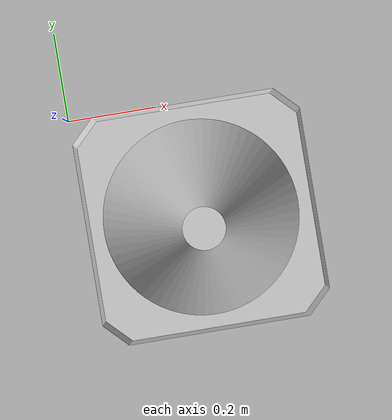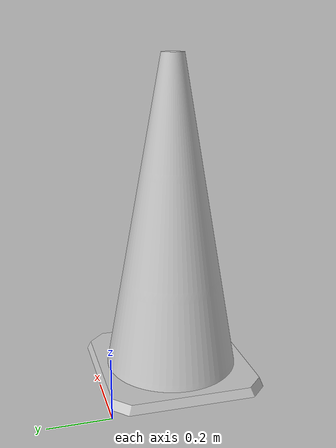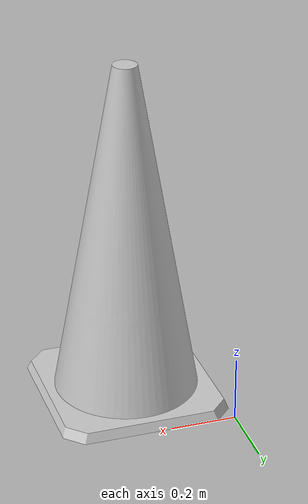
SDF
<sdf version="1.7">
<model name="traffic_cone" canonical_link="node0_link">
  <link name="node0_link">
    <collision name="node0_collision">
      <pose relative_to="node0_link">0.00000 0.00000 0.00000 0.00000 0.00000 0.00000</pose>
      <geometry>
        <mesh>
          <uri>meshes/Body.dae</uri>
          <scale>1.00000 1.00000 1.00000</scale>
        </mesh>
      </geometry>
      <surface>
        <contact><ode>  <max_vel>0.001</max_vel><min_depth>0.01</min_depth><kd>1e15</kd>  </ode></contact>
      </surface>
    </collision>
    <inertial>
      <inertia>
        <ixx>1.94536</ixx>
        <ixy>0.00000</ixy>
        <ixz>0.00544</ixz>
        <iyy>1.94538</iyy>
        <iyz>0.00000</iyz>
        <izz>0.25007</izz>
      </inertia>
      <pose relative_to="node0_link">0.26000 -0.26000 0.30336 0.00000 0.00000 0.00000</pose>
      <mass>10.00000</mass>
    </inertial>
    <visual name="node0">
      <material>
        <diffuse>0.80000 0.80000 0.80000 1.00000</diffuse>
        <specular>0.40000 0.40000 0.40000 0.49804</specular>
        <emissive>0.00000 0.00000 0.00000 1.00000</emissive>
      </material>
      <pose relative_to="node0_link">0.00000 0.00000 0.00000 0.00000 0.00000 0.00000</pose>
      <geometry>
        <mesh>
          <uri>meshes/Body.dae</uri>
          <scale>1.00000 1.00000 1.00000</scale>
        </mesh>
      </geometry>
    </visual>
  </link>
</model>
</sdf>
